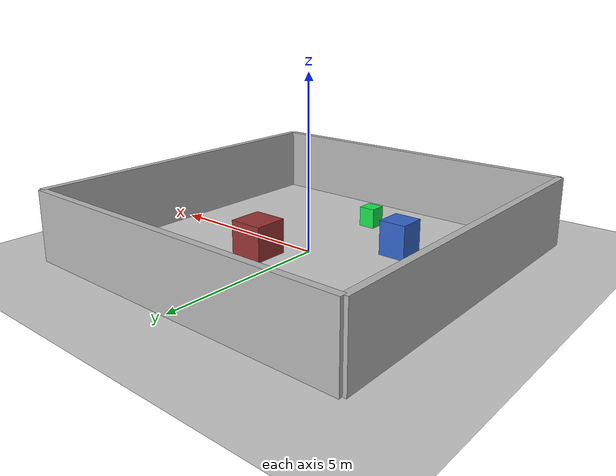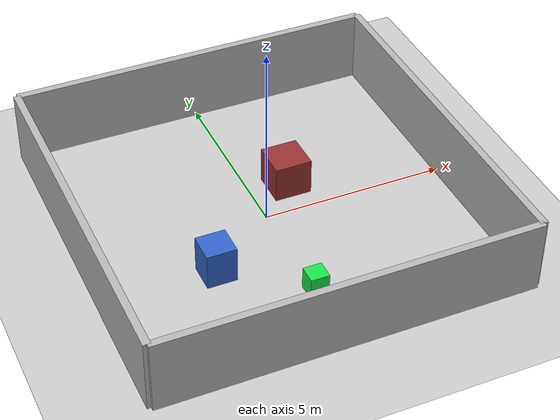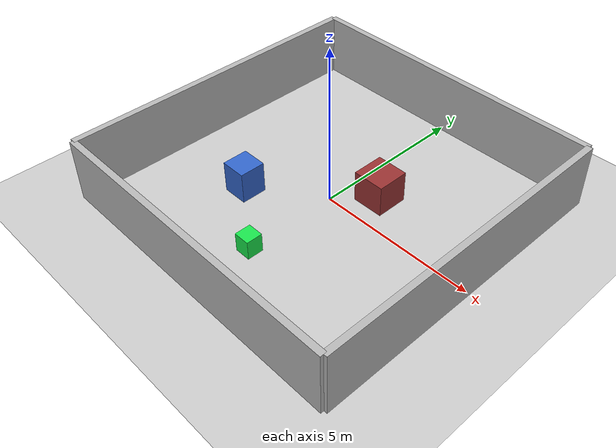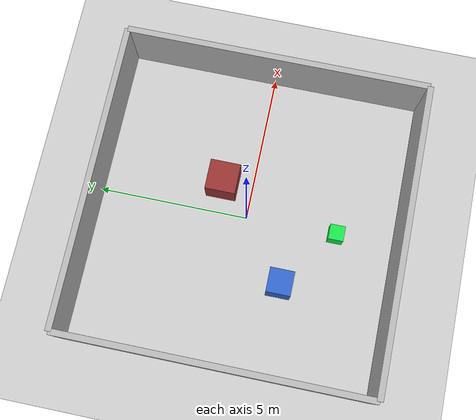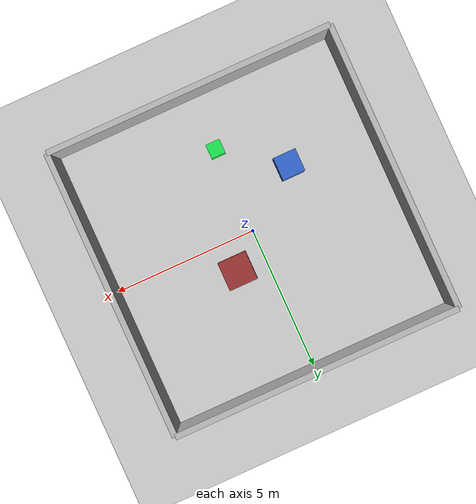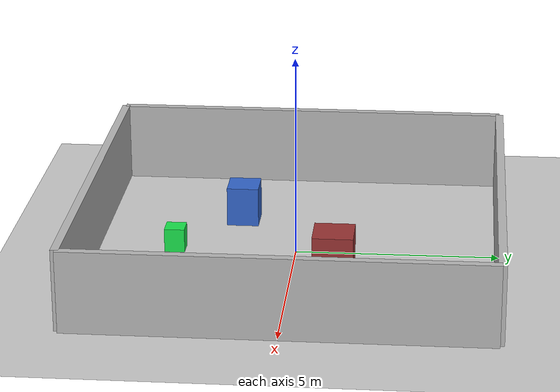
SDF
<?xml version="1.0" ?>
<sdf version="1.6">
  <world name="nav2_test_world">

    <!-- Ground plane -->
<model name="ground_plane">
  <static>true</static>
  <link name="link">
    <collision name="collision">
      <geometry>
        <plane>
          <normal>0 0 1</normal>
          <size>100 100</size>
        </plane>
      </geometry>
      <surface>
        <contact>
          <collide_without_contact>true</collide_without_contact>
        </contact>
      </surface>
    </collision>
    <visual name="visual">
      <geometry>
        <plane>
          <normal>0 0 1</normal>
          <size>100 100</size>
        </plane>
      </geometry>
      <material>
        <script>
          <uri>file://media/materials/scripts/gazebo.material</uri>
          <name>Gazebo/Grey</name>
        </script>
      </material>
    </visual>
  </link>
</model>

<!-- Sun light -->
<light type="directional" name="sun">
  <cast_shadows>true</cast_shadows>
  <pose>0 0 10 0 0 0</pose>
  <diffuse>1 1 1 1</diffuse>
  <specular>0.1 0.1 0.1 1</specular>
  <attenuation>
    <range>1000</range>
    <constant>0.9</constant>
    <linear>0.01</linear>
    <quadratic>0.001</quadratic>
  </attenuation>
  <direction>-0.5 0.5 -1</direction>
</light>

    <!-- Room walls -->
    <model name="wall_north">
      <pose>0 5 1 0 0 0</pose>
      <static>true</static>
      <link name="link">
        <visual name="visual">
          <geometry><box><size>10 0.2 2</size></box></geometry>
        </visual>
        <collision name="collision">
          <geometry><box><size>10 0.2 2</size></box></geometry>
        </collision>
      </link>
    </model>

    <model name="wall_south">
      <pose>0 -5 1 0 0 0</pose>
      <static>true</static>
      <link name="link">
        <visual name="visual">
          <geometry><box><size>10 0.2 2</size></box></geometry>
        </visual>
        <collision name="collision">
          <geometry><box><size>10 0.2 2</size></box></geometry>
        </collision>
      </link>
    </model>

    <model name="wall_east">
      <pose>5 0 1 0 0 0</pose>
      <static>true</static>
      <link name="link">
        <visual name="visual">
          <geometry><box><size>0.2 10 2</size></box></geometry>
        </visual>
        <collision name="collision">
          <geometry><box><size>0.2 10 2</size></box></geometry>
        </collision>
      </link>
    </model>

    <model name="wall_west">
      <pose>-5 0 1 0 0 0</pose>
      <static>true</static>
      <link name="link">
        <visual name="visual">
          <geometry><box><size>0.2 10 2</size></box></geometry>
        </visual>
        <collision name="collision">
          <geometry><box><size>0.2 10 2</size></box></geometry>
        </collision>
      </link>
    </model>

    <!-- Obstacle boxes -->
    <model name="box1">
      <pose>1 1 0.5 0 0 0</pose>
      <static>true</static>
      <link name="link">
        <visual name="visual">
          <geometry><box><size>1 1 1</size></box></geometry>
          <material><ambient>0.6 0.2 0.2 1</ambient></material>
        </visual>
        <collision name="collision">
          <geometry><box><size>1 1 1</size></box></geometry>
        </collision>
      </link>
    </model>

    <model name="box2">
      <pose>-2 -1.5 0.5 0 0 0</pose>
      <static>true</static>
      <link name="link">
        <visual name="visual">
          <geometry><box><size>0.8 0.8 1</size></box></geometry>
          <material><ambient>0.2 0.4 0.8 1</ambient></material>
        </visual>
        <collision name="collision">
          <geometry><box><size>0.8 0.8 1</size></box></geometry>
        </collision>
      </link>
    </model>

    <model name="box3">
      <pose>0 -3 0.3 0 0 0</pose>
      <static>true</static>
      <link name="link">
        <visual name="visual">
          <geometry><box><size>0.5 0.5 0.6</size></box></geometry>
          <material><ambient>0.1 0.9 0.3 1</ambient></material>
        </visual>
        <collision name="collision">
          <geometry><box><size>0.5 0.5 0.6</size></box></geometry>
        </collision>
      </link>
    </model>

  </world>
</sdf>
